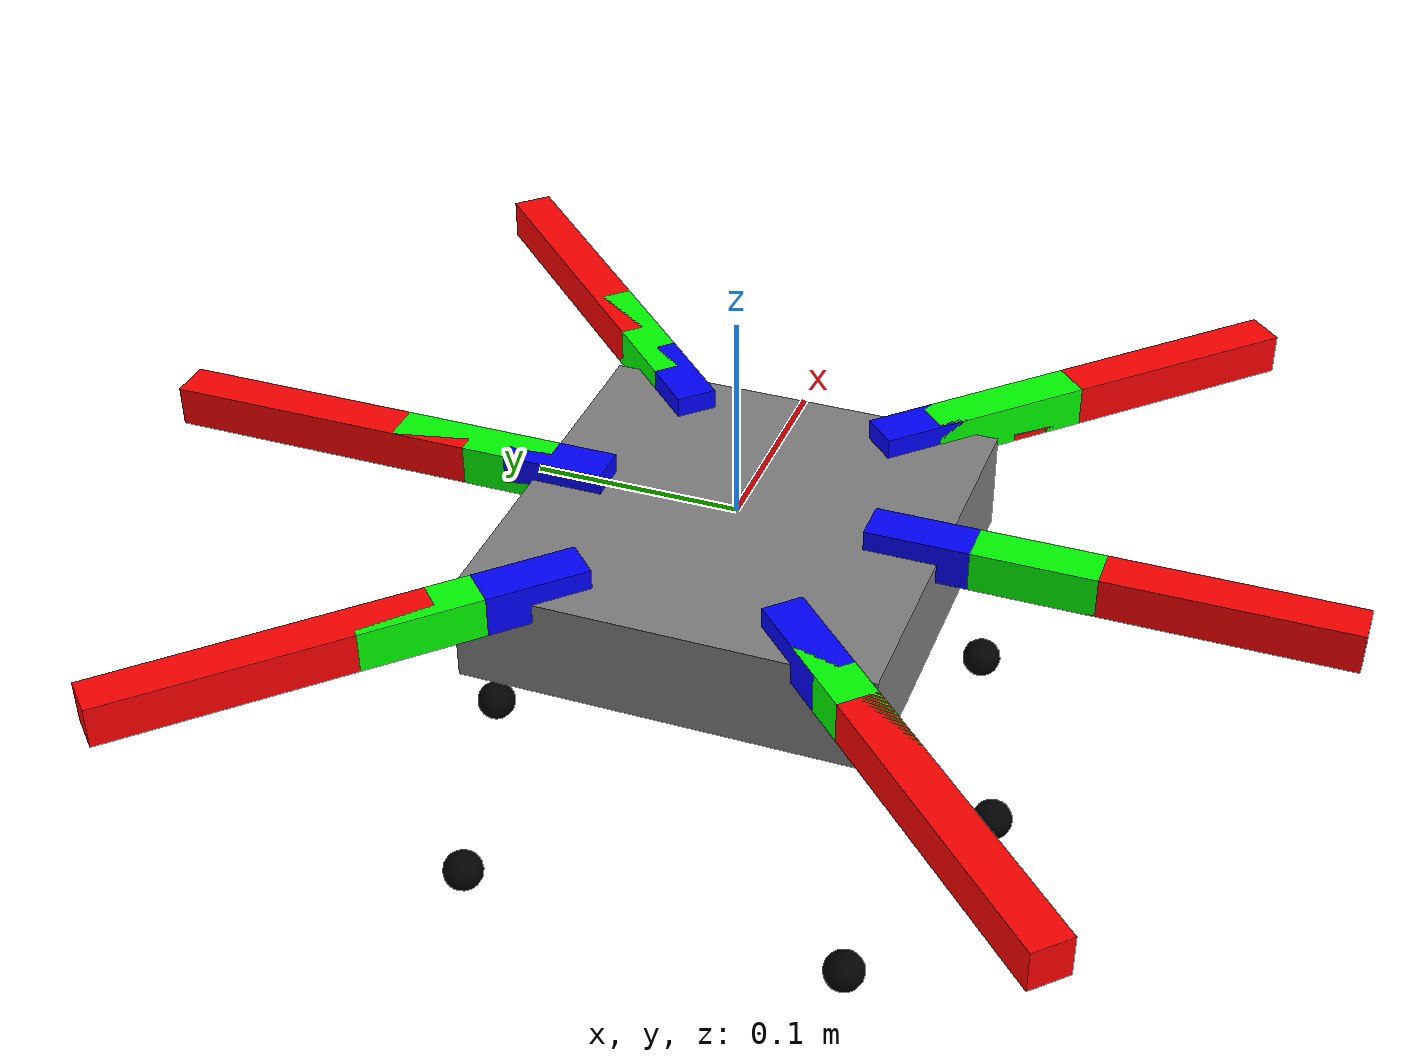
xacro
<?xml version="1.0"?>
<robot xmlns:xacro="http://ros.org/wiki/xacro" name="hexapod">

  <!-- General properties -->
  <xacro:property name="joint_lower_limit" value="-1.39626" /> <!-- -80 degrees -->
  <xacro:property name="joint_upper_limit" value="1.39626" />  <!-- +80 degrees -->
  <xacro:property name="joint_effort" value="10" />
  <xacro:property name="joint_velocity" value="5" />

  <!-- Base link -->
  <link name="base_link">
    <visual>
      <geometry>
        <box size="0.2 0.2 0.05" />
      </geometry>
      <origin xyz="0 0 -0.025" />
      <material name="grey">
        <color rgba="0.5 0.5 0.5 1" />
      </material>
    </visual>
  </link>

  <!-- Leg macro -->
  <xacro:macro name="leg" params="name x y angle side">
    <!-- Coxa joint -->
    <joint name="${name}_coxa_joint" type="revolute">
      <parent link="base_link" />
      <child link="${name}_coxa" />
      <origin xyz="${x} ${y} 0" rpy="0 0 ${angle}" />
      <axis xyz="0 0 1" /> <!-- Coxa rotates about the Z-axis -->
      <limit lower="${joint_lower_limit}" upper="${joint_upper_limit}" effort="${joint_effort}" velocity="${joint_velocity}" />
    </joint>
    <link name="${name}_coxa">
      <visual>
        <geometry>
          <box size="0.05 0.02 0.02" />
        </geometry>
        <material name="blue">
          <color rgba="0 0 1 1" />
        </material>
      </visual>
    </link>

    <!-- Femur joint -->
    <joint name="${name}_femur_joint" type="revolute">
      <parent link="${name}_coxa" />
      <child link="${name}_femur" />
      <origin xyz="0.044 0 0" rpy="0 0 0" />
      <axis xyz="0 1 0" /> <!-- Femur rotates about the Y-axis -->
      <limit lower="${joint_lower_limit}" upper="${joint_upper_limit}" effort="${joint_effort}" velocity="${joint_velocity}" />
    </joint>
    <link name="${name}_femur">
      <visual>
        <geometry>
          <box size="0.08 0.02 0.02" />
        </geometry>
        <material name="green">
          <color rgba="0 1 0 1" />
        </material>
      </visual>
    </link>

    <!-- Tibia joint -->
    <joint name="${name}_tibia_joint" type="revolute">
      <parent link="${name}_femur" />
      <child link="${name}_tibia" />
      <origin xyz="0.08 0 0" rpy="0 0 0" />
      <axis xyz="0 1 0" /> <!-- Tibia rotates about the Y-axis -->
      <limit lower="${joint_lower_limit}" upper="${joint_upper_limit}" effort="${joint_effort}" velocity="${joint_velocity}" />
    </joint>
    <link name="${name}_tibia">
      <visual>
        <geometry>
          <box size="0.155 0.02 0.02" />
        </geometry>
        <material name="red">
          <color rgba="1 0 0 1" />
        </material>
      </visual>
    </link>

    <!-- Foot -->
    <joint name="${name}_foot_joint" type="fixed">
      <parent link="${name}_tibia" />
      <child link="${name}_foot" />
      <origin xyz="-0.08 0 -0.155" rpy="0 0 0" />
    </joint>
    <link name="${name}_foot">
      <visual>
        <geometry>
          <sphere radius="0.01" />
        </geometry>
        <material name="black">
          <color rgba="0 0 0 1" />
        </material>
      </visual>
    </link>
  </xacro:macro>

  <!-- Legs -->
  <xacro:leg name="leg0" x="-0.09" y="-0.065" angle="-2.35619" side="1" /> <!-- Back Left -->
  <xacro:leg name="leg1" x="0.0" y="-0.09" angle="-1.5708" side="1" />     <!-- Left -->
  <xacro:leg name="leg2" x="0.09" y="-0.065" angle="-0.7854" side="1" />   <!-- Front Left -->
  <xacro:leg name="leg3" x="-0.09" y="0.065" angle="2.35619" side="-1" />  <!-- Back Right -->
  <xacro:leg name="leg4" x="0.0" y="0.09" angle="1.5708" side="-1" />      <!-- Right -->
  <xacro:leg name="leg5" x="0.09" y="0.065" angle="0.7854" side="-1" />    <!-- Front Right -->

</robot>
